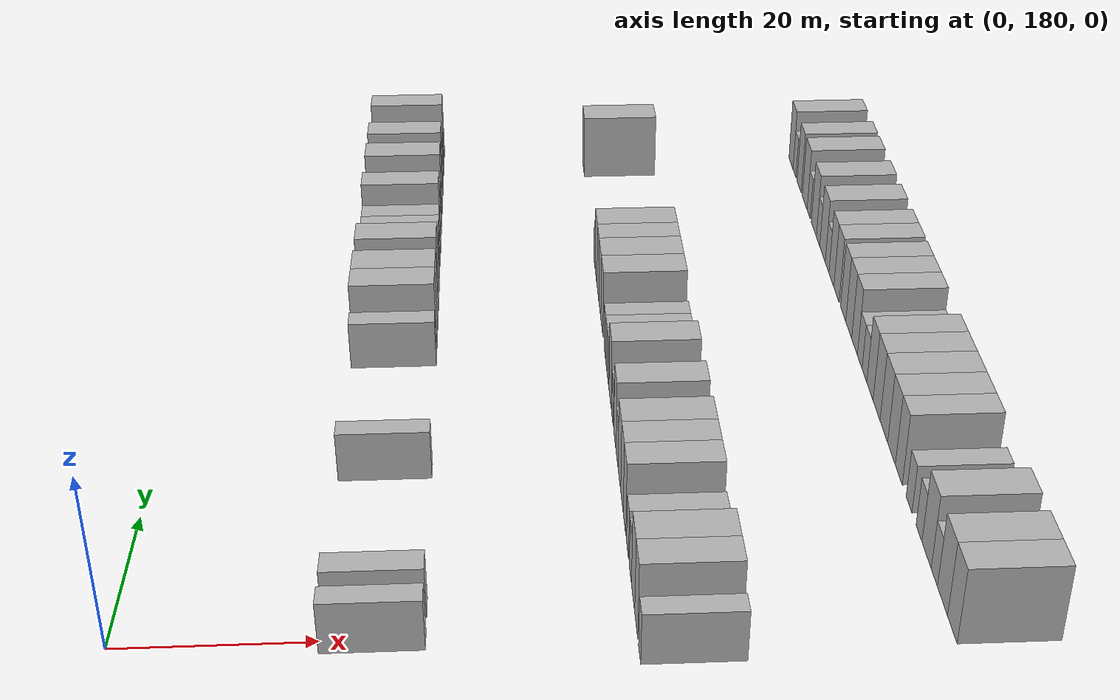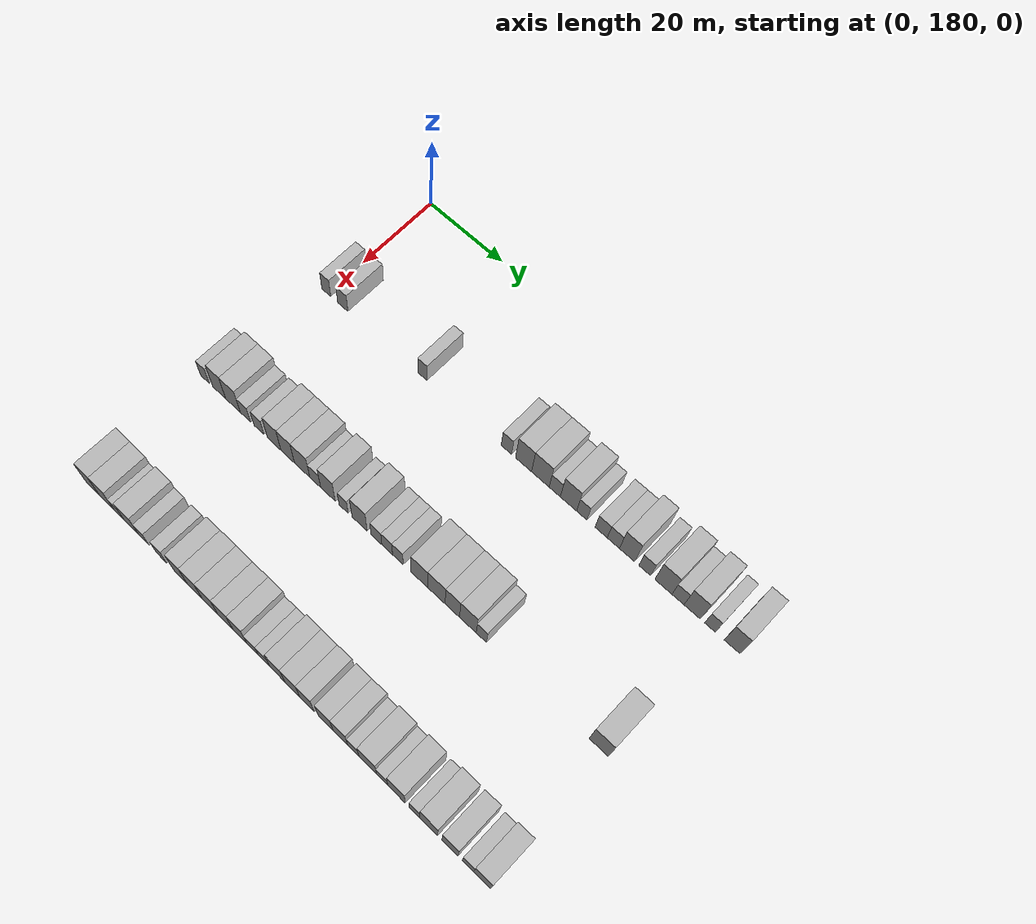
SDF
<sdf version="1.6">
 <world name="default">
  <model name="building_108">
   <static>1</static>
   <pose>25.0000 179.5839 0 0.000000 0.000000 0.000000</pose>
   <link name="link">
    <pose>0 0 3.00 0 0 0</pose>
    <collision name="collision"><geometry><box><size>10.0000 2.5598 6.0000</size></box></geometry></collision>
    <visual name="visual">
     <cast_shadows>0</cast_shadows>
     <geometry><box><size>10.0000 2.5598 6.0000</size></box></geometry>
     <material>
      <script>
       <uri>model://HANNAS_wall/materials/scripts</uri>
       <uri>model://HANNAS_wall/materials/textures</uri>
       <name>vrc/HANNAS_wall</name>
      </script>
     </material>
    </visual>
   </link>
  </model>
  <model name="building_109">
   <static>1</static>
   <pose>25.0000 184.3221 0 0.000000 0.000000 0.000000</pose>
   <link name="link">
    <pose>0 0 3.00 0 0 0</pose>
    <collision name="collision"><geometry><box><size>10.0000 2.9167 6.0000</size></box></geometry></collision>
    <visual name="visual">
     <cast_shadows>0</cast_shadows>
     <geometry><box><size>10.0000 2.9167 6.0000</size></box></geometry>
     <material>
      <script>
       <uri>model://HANNAS_wall/materials/scripts</uri>
       <uri>model://HANNAS_wall/materials/textures</uri>
       <name>vrc/HANNAS_wall</name>
      </script>
     </material>
    </visual>
   </link>
  </model>
  <model name="building_110">
   <static>1</static>
   <pose>25.0000 206.5322 0 0.000000 0.000000 0.000000</pose>
   <link name="link">
    <pose>0 0 3.00 0 0 0</pose>
    <collision name="collision"><geometry><box><size>10.0000 2.5012 6.0000</size></box></geometry></collision>
    <visual name="visual">
     <cast_shadows>0</cast_shadows>
     <geometry><box><size>10.0000 2.5012 6.0000</size></box></geometry>
     <material>
      <script>
       <uri>model://HANNAS_wall/materials/scripts</uri>
       <uri>model://HANNAS_wall/materials/textures</uri>
       <name>vrc/HANNAS_wall</name>
      </script>
     </material>
    </visual>
   </link>
  </model>
  <model name="building_111">
   <static>1</static>
   <pose>25.0000 228.8211 0 0.000000 0.000000 0.000000</pose>
   <link name="link">
    <pose>0 0 3.00 0 0 0</pose>
    <collision name="collision"><geometry><box><size>10.0000 2.6922 6.0000</size></box></geometry></collision>
    <visual name="visual">
     <cast_shadows>0</cast_shadows>
     <geometry><box><size>10.0000 2.6922 6.0000</size></box></geometry>
     <material>
      <script>
       <uri>model://HANNAS_wall/materials/scripts</uri>
       <uri>model://HANNAS_wall/materials/textures</uri>
       <name>vrc/HANNAS_wall</name>
      </script>
     </material>
    </visual>
   </link>
  </model>
  <model name="building_112">
   <static>1</static>
   <pose>25.0000 233.2193 0 0.000000 0.000000 0.000000</pose>
   <link name="link">
    <pose>0 0 4.50 0 0 0</pose>
    <collision name="collision"><geometry><box><size>10.0000 4.1043 9.0000</size></box></geometry></collision>
    <visual name="visual">
     <cast_shadows>0</cast_shadows>
     <geometry><box><size>10.0000 4.1043 9.0000</size></box></geometry>
     <material>
      <script>
       <uri>model://HANNAS_wall/materials/scripts</uri>
       <uri>model://HANNAS_wall/materials/textures</uri>
       <name>vrc/HANNAS_wall</name>
      </script>
     </material>
    </visual>
   </link>
  </model>
  <model name="building_113">
   <static>1</static>
   <pose>25.0000 237.5086 0 0.000000 0.000000 0.000000</pose>
   <link name="link">
    <pose>0 0 4.50 0 0 0</pose>
    <collision name="collision"><geometry><box><size>10.0000 4.4744 9.0000</size></box></geometry></collision>
    <visual name="visual">
     <cast_shadows>0</cast_shadows>
     <geometry><box><size>10.0000 4.4744 9.0000</size></box></geometry>
     <material>
      <script>
       <uri>model://HANNAS_wall/materials/scripts</uri>
       <uri>model://HANNAS_wall/materials/textures</uri>
       <name>vrc/HANNAS_wall</name>
      </script>
     </material>
    </visual>
   </link>
  </model>
  <model name="building_114">
   <static>1</static>
   <pose>25.0000 241.1492 0 0.000000 0.000000 0.000000</pose>
   <link name="link">
    <pose>0 0 3.00 0 0 0</pose>
    <collision name="collision"><geometry><box><size>10.0000 2.8068 6.0000</size></box></geometry></collision>
    <visual name="visual">
     <cast_shadows>0</cast_shadows>
     <geometry><box><size>10.0000 2.8068 6.0000</size></box></geometry>
     <material>
      <script>
       <uri>model://HANNAS_wall/materials/scripts</uri>
       <uri>model://HANNAS_wall/materials/textures</uri>
       <name>vrc/HANNAS_wall</name>
      </script>
     </material>
    </visual>
   </link>
  </model>
  <model name="building_115">
   <static>1</static>
   <pose>25.0000 244.5881 0 0.000000 0.000000 0.000000</pose>
   <link name="link">
    <pose>0 0 4.50 0 0 0</pose>
    <collision name="collision"><geometry><box><size>10.0000 4.0709 9.0000</size></box></geometry></collision>
    <visual name="visual">
     <cast_shadows>0</cast_shadows>
     <geometry><box><size>10.0000 4.0709 9.0000</size></box></geometry>
     <material>
      <script>
       <uri>model://HANNAS_wall/materials/scripts</uri>
       <uri>model://HANNAS_wall/materials/textures</uri>
       <name>vrc/HANNAS_wall</name>
      </script>
     </material>
    </visual>
   </link>
  </model>
  <model name="building_116">
   <static>1</static>
   <pose>25.0000 247.9055 0 0.000000 0.000000 0.000000</pose>
   <link name="link">
    <pose>0 0 3.00 0 0 0</pose>
    <collision name="collision"><geometry><box><size>10.0000 2.5639 6.0000</size></box></geometry></collision>
    <visual name="visual">
     <cast_shadows>0</cast_shadows>
     <geometry><box><size>10.0000 2.5639 6.0000</size></box></geometry>
     <material>
      <script>
       <uri>model://HANNAS_wall/materials/scripts</uri>
       <uri>model://HANNAS_wall/materials/textures</uri>
       <name>vrc/HANNAS_wall</name>
      </script>
     </material>
    </visual>
   </link>
  </model>
  <model name="building_117">
   <static>1</static>
   <pose>25.0000 252.6793 0 0.000000 0.000000 0.000000</pose>
   <link name="link">
    <pose>0 0 3.00 0 0 0</pose>
    <collision name="collision"><geometry><box><size>10.0000 2.9838 6.0000</size></box></geometry></collision>
    <visual name="visual">
     <cast_shadows>0</cast_shadows>
     <geometry><box><size>10.0000 2.9838 6.0000</size></box></geometry>
     <material>
      <script>
       <uri>model://HANNAS_wall/materials/scripts</uri>
       <uri>model://HANNAS_wall/materials/textures</uri>
       <name>vrc/HANNAS_wall</name>
      </script>
     </material>
    </visual>
   </link>
  </model>
  <model name="building_118">
   <static>1</static>
   <pose>25.0000 255.6579 0 0.000000 0.000000 0.000000</pose>
   <link name="link">
    <pose>0 0 3.00 0 0 0</pose>
    <collision name="collision"><geometry><box><size>10.0000 2.9733 6.0000</size></box></geometry></collision>
    <visual name="visual">
     <cast_shadows>0</cast_shadows>
     <geometry><box><size>10.0000 2.9733 6.0000</size></box></geometry>
     <material>
      <script>
       <uri>model://HANNAS_wall/materials/scripts</uri>
       <uri>model://HANNAS_wall/materials/textures</uri>
       <name>vrc/HANNAS_wall</name>
      </script>
     </material>
    </visual>
   </link>
  </model>
  <model name="building_119">
   <static>1</static>
   <pose>25.0000 258.9880 0 0.000000 0.000000 0.000000</pose>
   <link name="link">
    <pose>0 0 4.50 0 0 0</pose>
    <collision name="collision"><geometry><box><size>10.0000 3.6871 9.0000</size></box></geometry></collision>
    <visual name="visual">
     <cast_shadows>0</cast_shadows>
     <geometry><box><size>10.0000 3.6871 9.0000</size></box></geometry>
     <material>
      <script>
       <uri>model://HANNAS_wall/materials/scripts</uri>
       <uri>model://HANNAS_wall/materials/textures</uri>
       <name>vrc/HANNAS_wall</name>
      </script>
     </material>
    </visual>
   </link>
  </model>
  <model name="building_120">
   <static>1</static>
   <pose>25.0000 263.2433 0 0.000000 0.000000 0.000000</pose>
   <link name="link">
    <pose>0 0 3.00 0 0 0</pose>
    <collision name="collision"><geometry><box><size>10.0000 2.8235 6.0000</size></box></geometry></collision>
    <visual name="visual">
     <cast_shadows>0</cast_shadows>
     <geometry><box><size>10.0000 2.8235 6.0000</size></box></geometry>
     <material>
      <script>
       <uri>model://HANNAS_wall/materials/scripts</uri>
       <uri>model://HANNAS_wall/materials/textures</uri>
       <name>vrc/HANNAS_wall</name>
      </script>
     </material>
    </visual>
   </link>
  </model>
  <model name="building_121">
   <static>1</static>
   <pose>25.0000 267.6798 0 0.000000 0.000000 0.000000</pose>
   <link name="link">
    <pose>0 0 4.50 0 0 0</pose>
    <collision name="collision"><geometry><box><size>10.0000 4.0494 9.0000</size></box></geometry></collision>
    <visual name="visual">
     <cast_shadows>0</cast_shadows>
     <geometry><box><size>10.0000 4.0494 9.0000</size></box></geometry>
     <material>
      <script>
       <uri>model://HANNAS_wall/materials/scripts</uri>
       <uri>model://HANNAS_wall/materials/textures</uri>
       <name>vrc/HANNAS_wall</name>
      </script>
     </material>
    </visual>
   </link>
  </model>
  <model name="building_122">
   <static>1</static>
   <pose>25.0000 271.1233 0 0.000000 0.000000 0.000000</pose>
   <link name="link">
    <pose>0 0 3.00 0 0 0</pose>
    <collision name="collision"><geometry><box><size>10.0000 2.8376 6.0000</size></box></geometry></collision>
    <visual name="visual">
     <cast_shadows>0</cast_shadows>
     <geometry><box><size>10.0000 2.8376 6.0000</size></box></geometry>
     <material>
      <script>
       <uri>model://HANNAS_wall/materials/scripts</uri>
       <uri>model://HANNAS_wall/materials/textures</uri>
       <name>vrc/HANNAS_wall</name>
      </script>
     </material>
    </visual>
   </link>
  </model>
  <model name="building_123">
   <static>1</static>
   <pose>25.0000 274.4433 0 0.000000 0.000000 0.000000</pose>
   <link name="link">
    <pose>0 0 4.50 0 0 0</pose>
    <collision name="collision"><geometry><box><size>10.0000 3.8024 9.0000</size></box></geometry></collision>
    <visual name="visual">
     <cast_shadows>0</cast_shadows>
     <geometry><box><size>10.0000 3.8024 9.0000</size></box></geometry>
     <material>
      <script>
       <uri>model://HANNAS_wall/materials/scripts</uri>
       <uri>model://HANNAS_wall/materials/textures</uri>
       <name>vrc/HANNAS_wall</name>
      </script>
     </material>
    </visual>
   </link>
  </model>
  <model name="building_124">
   <static>1</static>
   <pose>25.0000 278.5895 0 0.000000 0.000000 0.000000</pose>
   <link name="link">
    <pose>0 0 3.00 0 0 0</pose>
    <collision name="collision"><geometry><box><size>10.0000 2.4900 6.0000</size></box></geometry></collision>
    <visual name="visual">
     <cast_shadows>0</cast_shadows>
     <geometry><box><size>10.0000 2.4900 6.0000</size></box></geometry>
     <material>
      <script>
       <uri>model://HANNAS_wall/materials/scripts</uri>
       <uri>model://HANNAS_wall/materials/textures</uri>
       <name>vrc/HANNAS_wall</name>
      </script>
     </material>
    </visual>
   </link>
  </model>
  <model name="building_125">
   <static>1</static>
   <pose>25.0000 283.6399 0 0.000000 0.000000 0.000000</pose>
   <link name="link">
    <pose>0 0 4.50 0 0 0</pose>
    <collision name="collision"><geometry><box><size>10.0000 3.6109 9.0000</size></box></geometry></collision>
    <visual name="visual">
     <cast_shadows>0</cast_shadows>
     <geometry><box><size>10.0000 3.6109 9.0000</size></box></geometry>
     <material>
      <script>
       <uri>model://HANNAS_wall/materials/scripts</uri>
       <uri>model://HANNAS_wall/materials/textures</uri>
       <name>vrc/HANNAS_wall</name>
      </script>
     </material>
    </visual>
   </link>
  </model>
  <model name="building_238">
   <static>1</static>
   <pose>55.0000 176.6505 0 0.000000 0.000000 0.000000</pose>
   <link name="link">
    <pose>0 0 3.00 0 0 0</pose>
    <collision name="collision"><geometry><box><size>10.0000 2.5370 6.0000</size></box></geometry></collision>
    <visual name="visual">
     <cast_shadows>0</cast_shadows>
     <geometry><box><size>10.0000 2.5370 6.0000</size></box></geometry>
     <material>
      <script>
       <uri>model://HANNAS_wall/materials/scripts</uri>
       <uri>model://HANNAS_wall/materials/textures</uri>
       <name>vrc/HANNAS_wall</name>
      </script>
     </material>
    </visual>
   </link>
  </model>
  <model name="building_239">
   <static>1</static>
   <pose>55.0000 180.7821 0 0.000000 0.000000 0.000000</pose>
   <link name="link">
    <pose>0 0 4.50 0 0 0</pose>
    <collision name="collision"><geometry><box><size>10.0000 3.7262 9.0000</size></box></geometry></collision>
    <visual name="visual">
     <cast_shadows>0</cast_shadows>
     <geometry><box><size>10.0000 3.7262 9.0000</size></box></geometry>
     <material>
      <script>
       <uri>model://HANNAS_wall/materials/scripts</uri>
       <uri>model://HANNAS_wall/materials/textures</uri>
       <name>vrc/HANNAS_wall</name>
      </script>
     </material>
    </visual>
   </link>
  </model>
  <model name="building_240">
   <static>1</static>
   <pose>55.0000 184.7415 0 0.000000 0.000000 0.000000</pose>
   <link name="link">
    <pose>0 0 4.50 0 0 0</pose>
    <collision name="collision"><geometry><box><size>10.0000 4.1928 9.0000</size></box></geometry></collision>
    <visual name="visual">
     <cast_shadows>0</cast_shadows>
     <geometry><box><size>10.0000 4.1928 9.0000</size></box></geometry>
     <material>
      <script>
       <uri>model://HANNAS_wall/materials/scripts</uri>
       <uri>model://HANNAS_wall/materials/textures</uri>
       <name>vrc/HANNAS_wall</name>
      </script>
     </material>
    </visual>
   </link>
  </model>
  <model name="building_241">
   <static>1</static>
   <pose>55.0000 188.2786 0 0.000000 0.000000 0.000000</pose>
   <link name="link">
    <pose>0 0 3.00 0 0 0</pose>
    <collision name="collision"><geometry><box><size>10.0000 2.8814 6.0000</size></box></geometry></collision>
    <visual name="visual">
     <cast_shadows>0</cast_shadows>
     <geometry><box><size>10.0000 2.8814 6.0000</size></box></geometry>
     <material>
      <script>
       <uri>model://HANNAS_wall/materials/scripts</uri>
       <uri>model://HANNAS_wall/materials/textures</uri>
       <name>vrc/HANNAS_wall</name>
      </script>
     </material>
    </visual>
   </link>
  </model>
  <model name="building_242">
   <static>1</static>
   <pose>55.0000 192.0998 0 0.000000 0.000000 0.000000</pose>
   <link name="link">
    <pose>0 0 3.00 0 0 0</pose>
    <collision name="collision"><geometry><box><size>10.0000 2.7609 6.0000</size></box></geometry></collision>
    <visual name="visual">
     <cast_shadows>0</cast_shadows>
     <geometry><box><size>10.0000 2.7609 6.0000</size></box></geometry>
     <material>
      <script>
       <uri>model://HANNAS_wall/materials/scripts</uri>
       <uri>model://HANNAS_wall/materials/textures</uri>
       <name>vrc/HANNAS_wall</name>
      </script>
     </material>
    </visual>
   </link>
  </model>
  <model name="building_243">
   <static>1</static>
   <pose>55.0000 196.3557 0 0.000000 0.000000 0.000000</pose>
   <link name="link">
    <pose>0 0 4.50 0 0 0</pose>
    <collision name="collision"><geometry><box><size>10.0000 3.7509 9.0000</size></box></geometry></collision>
    <visual name="visual">
     <cast_shadows>0</cast_shadows>
     <geometry><box><size>10.0000 3.7509 9.0000</size></box></geometry>
     <material>
      <script>
       <uri>model://HANNAS_wall/materials/scripts</uri>
       <uri>model://HANNAS_wall/materials/textures</uri>
       <name>vrc/HANNAS_wall</name>
      </script>
     </material>
    </visual>
   </link>
  </model>
  <model name="building_244">
   <static>1</static>
   <pose>55.0000 200.1061 0 0.000000 0.000000 0.000000</pose>
   <link name="link">
    <pose>0 0 4.50 0 0 0</pose>
    <collision name="collision"><geometry><box><size>10.0000 3.7500 9.0000</size></box></geometry></collision>
    <visual name="visual">
     <cast_shadows>0</cast_shadows>
     <geometry><box><size>10.0000 3.7500 9.0000</size></box></geometry>
     <material>
      <script>
       <uri>model://HANNAS_wall/materials/scripts</uri>
       <uri>model://HANNAS_wall/materials/textures</uri>
       <name>vrc/HANNAS_wall</name>
      </script>
     </material>
    </visual>
   </link>
  </model>
  <model name="building_245">
   <static>1</static>
   <pose>55.0000 204.0801 0 0.000000 0.000000 0.000000</pose>
   <link name="link">
    <pose>0 0 4.50 0 0 0</pose>
    <collision name="collision"><geometry><box><size>10.0000 4.1981 9.0000</size></box></geometry></collision>
    <visual name="visual">
     <cast_shadows>0</cast_shadows>
     <geometry><box><size>10.0000 4.1981 9.0000</size></box></geometry>
     <material>
      <script>
       <uri>model://HANNAS_wall/materials/scripts</uri>
       <uri>model://HANNAS_wall/materials/textures</uri>
       <name>vrc/HANNAS_wall</name>
      </script>
     </material>
    </visual>
   </link>
  </model>
  <model name="building_246">
   <static>1</static>
   <pose>55.0000 207.6534 0 0.000000 0.000000 0.000000</pose>
   <link name="link">
    <pose>0 0 3.00 0 0 0</pose>
    <collision name="collision"><geometry><box><size>10.0000 2.9484 6.0000</size></box></geometry></collision>
    <visual name="visual">
     <cast_shadows>0</cast_shadows>
     <geometry><box><size>10.0000 2.9484 6.0000</size></box></geometry>
     <material>
      <script>
       <uri>model://HANNAS_wall/materials/scripts</uri>
       <uri>model://HANNAS_wall/materials/textures</uri>
       <name>vrc/HANNAS_wall</name>
      </script>
     </material>
    </visual>
   </link>
  </model>
  <model name="building_247">
   <static>1</static>
   <pose>55.0000 211.0890 0 0.000000 0.000000 0.000000</pose>
   <link name="link">
    <pose>0 0 4.50 0 0 0</pose>
    <collision name="collision"><geometry><box><size>10.0000 3.9227 9.0000</size></box></geometry></collision>
    <visual name="visual">
     <cast_shadows>0</cast_shadows>
     <geometry><box><size>10.0000 3.9227 9.0000</size></box></geometry>
     <material>
      <script>
       <uri>model://HANNAS_wall/materials/scripts</uri>
       <uri>model://HANNAS_wall/materials/textures</uri>
       <name>vrc/HANNAS_wall</name>
      </script>
     </material>
    </visual>
   </link>
  </model>
  <model name="building_248">
   <static>1</static>
   <pose>55.0000 215.2648 0 0.000000 0.000000 0.000000</pose>
   <link name="link">
    <pose>0 0 3.00 0 0 0</pose>
    <collision name="collision"><geometry><box><size>10.0000 2.4289 6.0000</size></box></geometry></collision>
    <visual name="visual">
     <cast_shadows>0</cast_shadows>
     <geometry><box><size>10.0000 2.4289 6.0000</size></box></geometry>
     <material>
      <script>
       <uri>model://HANNAS_wall/materials/scripts</uri>
       <uri>model://HANNAS_wall/materials/textures</uri>
       <name>vrc/HANNAS_wall</name>
      </script>
     </material>
    </visual>
   </link>
  </model>
  <model name="building_249">
   <static>1</static>
   <pose>55.0000 219.4747 0 0.000000 0.000000 0.000000</pose>
   <link name="link">
    <pose>0 0 4.50 0 0 0</pose>
    <collision name="collision"><geometry><box><size>10.0000 3.9911 9.0000</size></box></geometry></collision>
    <visual name="visual">
     <cast_shadows>0</cast_shadows>
     <geometry><box><size>10.0000 3.9911 9.0000</size></box></geometry>
     <material>
      <script>
       <uri>model://HANNAS_wall/materials/scripts</uri>
       <uri>model://HANNAS_wall/materials/textures</uri>
       <name>vrc/HANNAS_wall</name>
      </script>
     </material>
    </visual>
   </link>
  </model>
  <model name="building_250">
   <static>1</static>
   <pose>55.0000 223.8853 0 0.000000 0.000000 0.000000</pose>
   <link name="link">
    <pose>0 0 3.00 0 0 0</pose>
    <collision name="collision"><geometry><box><size>10.0000 2.8301 6.0000</size></box></geometry></collision>
    <visual name="visual">
     <cast_shadows>0</cast_shadows>
     <geometry><box><size>10.0000 2.8301 6.0000</size></box></geometry>
     <material>
      <script>
       <uri>model://HANNAS_wall/materials/scripts</uri>
       <uri>model://HANNAS_wall/materials/textures</uri>
       <name>vrc/HANNAS_wall</name>
      </script>
     </material>
    </visual>
   </link>
  </model>
  <model name="building_251">
   <static>1</static>
   <pose>55.0000 226.6952 0 0.000000 0.000000 0.000000</pose>
   <link name="link">
    <pose>0 0 3.00 0 0 0</pose>
    <collision name="collision"><geometry><box><size>10.0000 2.7897 6.0000</size></box></geometry></collision>
    <visual name="visual">
     <cast_shadows>0</cast_shadows>
     <geometry><box><size>10.0000 2.7897 6.0000</size></box></geometry>
     <material>
      <script>
       <uri>model://HANNAS_wall/materials/scripts</uri>
       <uri>model://HANNAS_wall/materials/textures</uri>
       <name>vrc/HANNAS_wall</name>
      </script>
     </material>
    </visual>
   </link>
  </model>
  <model name="building_252">
   <static>1</static>
   <pose>55.0000 229.4652 0 0.000000 0.000000 0.000000</pose>
   <link name="link">
    <pose>0 0 3.00 0 0 0</pose>
    <collision name="collision"><geometry><box><size>10.0000 2.7503 6.0000</size></box></geometry></collision>
    <visual name="visual">
     <cast_shadows>0</cast_shadows>
     <geometry><box><size>10.0000 2.7503 6.0000</size></box></geometry>
     <material>
      <script>
       <uri>model://HANNAS_wall/materials/scripts</uri>
       <uri>model://HANNAS_wall/materials/textures</uri>
       <name>vrc/HANNAS_wall</name>
      </script>
     </material>
    </visual>
   </link>
  </model>
  <model name="building_253">
   <static>1</static>
   <pose>55.0000 234.9416 0 0.000000 0.000000 0.000000</pose>
   <link name="link">
    <pose>0 0 4.50 0 0 0</pose>
    <collision name="collision"><geometry><box><size>10.0000 4.2026 9.0000</size></box></geometry></collision>
    <visual name="visual">
     <cast_shadows>0</cast_shadows>
     <geometry><box><size>10.0000 4.2026 9.0000</size></box></geometry>
     <material>
      <script>
       <uri>model://HANNAS_wall/materials/scripts</uri>
       <uri>model://HANNAS_wall/materials/textures</uri>
       <name>vrc/HANNAS_wall</name>
      </script>
     </material>
    </visual>
   </link>
  </model>
  <model name="building_254">
   <static>1</static>
   <pose>55.0000 239.2502 0 0.000000 0.000000 0.000000</pose>
   <link name="link">
    <pose>0 0 4.50 0 0 0</pose>
    <collision name="collision"><geometry><box><size>10.0000 4.4145 9.0000</size></box></geometry></collision>
    <visual name="visual">
     <cast_shadows>0</cast_shadows>
     <geometry><box><size>10.0000 4.4145 9.0000</size></box></geometry>
     <material>
      <script>
       <uri>model://HANNAS_wall/materials/scripts</uri>
       <uri>model://HANNAS_wall/materials/textures</uri>
       <name>vrc/HANNAS_wall</name>
      </script>
     </material>
    </visual>
   </link>
  </model>
  <model name="building_255">
   <static>1</static>
   <pose>55.0000 243.2577 0 0.000000 0.000000 0.000000</pose>
   <link name="link">
    <pose>0 0 4.50 0 0 0</pose>
    <collision name="collision"><geometry><box><size>10.0000 3.6005 9.0000</size></box></geometry></collision>
    <visual name="visual">
     <cast_shadows>0</cast_shadows>
     <geometry><box><size>10.0000 3.6005 9.0000</size></box></geometry>
     <material>
      <script>
       <uri>model://HANNAS_wall/materials/scripts</uri>
       <uri>model://HANNAS_wall/materials/textures</uri>
       <name>vrc/HANNAS_wall</name>
      </script>
     </material>
    </visual>
   </link>
  </model>
  <model name="building_256">
   <static>1</static>
   <pose>55.0000 247.1183 0 0.000000 0.000000 0.000000</pose>
   <link name="link">
    <pose>0 0 4.50 0 0 0</pose>
    <collision name="collision"><geometry><box><size>10.0000 4.1207 9.0000</size></box></geometry></collision>
    <visual name="visual">
     <cast_shadows>0</cast_shadows>
     <geometry><box><size>10.0000 4.1207 9.0000</size></box></geometry>
     <material>
      <script>
       <uri>model://HANNAS_wall/materials/scripts</uri>
       <uri>model://HANNAS_wall/materials/textures</uri>
       <name>vrc/HANNAS_wall</name>
      </script>
     </material>
    </visual>
   </link>
  </model>
  <model name="building_257">
   <static>1</static>
   <pose>55.0000 250.4453 0 0.000000 0.000000 0.000000</pose>
   <link name="link">
    <pose>0 0 3.00 0 0 0</pose>
    <collision name="collision"><geometry><box><size>10.0000 2.5334 6.0000</size></box></geometry></collision>
    <visual name="visual">
     <cast_shadows>0</cast_shadows>
     <geometry><box><size>10.0000 2.5334 6.0000</size></box></geometry>
     <material>
      <script>
       <uri>model://HANNAS_wall/materials/scripts</uri>
       <uri>model://HANNAS_wall/materials/textures</uri>
       <name>vrc/HANNAS_wall</name>
      </script>
     </material>
    </visual>
   </link>
  </model>
  <model name="building_258">
   <static>1</static>
   <pose>55.0000 278.3183 0 0.000000 0.000000 0.000000</pose>
   <link name="link">
    <pose>0 0 4.50 0 0 0</pose>
    <collision name="collision"><geometry><box><size>10.0000 4.4042 9.0000</size></box></geometry></collision>
    <visual name="visual">
     <cast_shadows>0</cast_shadows>
     <geometry><box><size>10.0000 4.4042 9.0000</size></box></geometry>
     <material>
      <script>
       <uri>model://HANNAS_wall/materials/scripts</uri>
       <uri>model://HANNAS_wall/materials/textures</uri>
       <name>vrc/HANNAS_wall</name>
      </script>
     </material>
    </visual>
   </link>
  </model>
  <model name="building_373">
   <static>1</static>
   <pose>85.0000 178.7005 0 0.000000 0.000000 0.000000</pose>
   <link name="link">
    <pose>0 0 4.50 0 0 0</pose>
    <collision name="collision"><geometry><box><size>10.0000 3.9668 9.0000</size></box></geometry></collision>
    <visual name="visual">
     <cast_shadows>0</cast_shadows>
     <geometry><box><size>10.0000 3.9668 9.0000</size></box></geometry>
     <material>
      <script>
       <uri>model://HANNAS_wall/materials/scripts</uri>
       <uri>model://HANNAS_wall/materials/textures</uri>
       <name>vrc/HANNAS_wall</name>
      </script>
     </material>
    </visual>
   </link>
  </model>
  <model name="building_374">
   <static>1</static>
   <pose>85.0000 182.8506 0 0.000000 0.000000 0.000000</pose>
   <link name="link">
    <pose>0 0 4.50 0 0 0</pose>
    <collision name="collision"><geometry><box><size>10.0000 4.3332 9.0000</size></box></geometry></collision>
    <visual name="visual">
     <cast_shadows>0</cast_shadows>
     <geometry><box><size>10.0000 4.3332 9.0000</size></box></geometry>
     <material>
      <script>
       <uri>model://HANNAS_wall/materials/scripts</uri>
       <uri>model://HANNAS_wall/materials/textures</uri>
       <name>vrc/HANNAS_wall</name>
      </script>
     </material>
    </visual>
   </link>
  </model>
  <model name="building_375">
   <static>1</static>
   <pose>85.0000 186.3834 0 0.000000 0.000000 0.000000</pose>
   <link name="link">
    <pose>0 0 3.00 0 0 0</pose>
    <collision name="collision"><geometry><box><size>10.0000 2.7324 6.0000</size></box></geometry></collision>
    <visual name="visual">
     <cast_shadows>0</cast_shadows>
     <geometry><box><size>10.0000 2.7324 6.0000</size></box></geometry>
     <material>
      <script>
       <uri>model://HANNAS_wall/materials/scripts</uri>
       <uri>model://HANNAS_wall/materials/textures</uri>
       <name>vrc/HANNAS_wall</name>
      </script>
     </material>
    </visual>
   </link>
  </model>
  <model name="building_376">
   <static>1</static>
   <pose>85.0000 189.8733 0 0.000000 0.000000 0.000000</pose>
   <link name="link">
    <pose>0 0 4.50 0 0 0</pose>
    <collision name="collision"><geometry><box><size>10.0000 4.2475 9.0000</size></box></geometry></collision>
    <visual name="visual">
     <cast_shadows>0</cast_shadows>
     <geometry><box><size>10.0000 4.2475 9.0000</size></box></geometry>
     <material>
      <script>
       <uri>model://HANNAS_wall/materials/scripts</uri>
       <uri>model://HANNAS_wall/materials/textures</uri>
       <name>vrc/HANNAS_wall</name>
      </script>
     </material>
    </visual>
   </link>
  </model>
  <model name="building_377">
   <static>1</static>
   <pose>85.0000 193.3762 0 0.000000 0.000000 0.000000</pose>
   <link name="link">
    <pose>0 0 3.00 0 0 0</pose>
    <collision name="collision"><geometry><box><size>10.0000 2.7584 6.0000</size></box></geometry></collision>
    <visual name="visual">
     <cast_shadows>0</cast_shadows>
     <geometry><box><size>10.0000 2.7584 6.0000</size></box></geometry>
     <material>
      <script>
       <uri>model://HANNAS_wall/materials/scripts</uri>
       <uri>model://HANNAS_wall/materials/textures</uri>
       <name>vrc/HANNAS_wall</name>
      </script>
     </material>
    </visual>
   </link>
  </model>
  <model name="building_378">
   <static>1</static>
   <pose>85.0000 198.1816 0 0.000000 0.000000 0.000000</pose>
   <link name="link">
    <pose>0 0 3.00 0 0 0</pose>
    <collision name="collision"><geometry><box><size>10.0000 2.8524 6.0000</size></box></geometry></collision>
    <visual name="visual">
     <cast_shadows>0</cast_shadows>
     <geometry><box><size>10.0000 2.8524 6.0000</size></box></geometry>
     <material>
      <script>
       <uri>model://HANNAS_wall/materials/scripts</uri>
       <uri>model://HANNAS_wall/materials/textures</uri>
       <name>vrc/HANNAS_wall</name>
      </script>
     </material>
    </visual>
   </link>
  </model>
  <model name="building_379">
   <static>1</static>
   <pose>85.0000 203.4276 0 0.000000 0.000000 0.000000</pose>
   <link name="link">
    <pose>0 0 4.50 0 0 0</pose>
    <collision name="collision"><geometry><box><size>10.0000 3.6395 9.0000</size></box></geometry></collision>
    <visual name="visual">
     <cast_shadows>0</cast_shadows>
     <geometry><box><size>10.0000 3.6395 9.0000</size></box></geometry>
     <material>
      <script>
       <uri>model://HANNAS_wall/materials/scripts</uri>
       <uri>model://HANNAS_wall/materials/textures</uri>
       <name>vrc/HANNAS_wall</name>
      </script>
     </material>
    </visual>
   </link>
  </model>
  <model name="building_380">
   <static>1</static>
   <pose>85.0000 207.3209 0 0.000000 0.000000 0.000000</pose>
   <link name="link">
    <pose>0 0 4.50 0 0 0</pose>
    <collision name="collision"><geometry><box><size>10.0000 4.1471 9.0000</size></box></geometry></collision>
    <visual name="visual">
     <cast_shadows>0</cast_shadows>
     <geometry><box><size>10.0000 4.1471 9.0000</size></box></geometry>
     <material>
      <script>
       <uri>model://HANNAS_wall/materials/scripts</uri>
       <uri>model://HANNAS_wall/materials/textures</uri>
       <name>vrc/HANNAS_wall</name>
      </script>
     </material>
    </visual>
   </link>
  </model>
  <model name="building_381">
   <static>1</static>
   <pose>85.0000 211.5154 0 0.000000 0.000000 0.000000</pose>
   <link name="link">
    <pose>0 0 4.50 0 0 0</pose>
    <collision name="collision"><geometry><box><size>10.0000 4.2418 9.0000</size></box></geometry></collision>
    <visual name="visual">
     <cast_shadows>0</cast_shadows>
     <geometry><box><size>10.0000 4.2418 9.0000</size></box></geometry>
     <material>
      <script>
       <uri>model://HANNAS_wall/materials/scripts</uri>
       <uri>model://HANNAS_wall/materials/textures</uri>
       <name>vrc/HANNAS_wall</name>
      </script>
     </material>
    </visual>
   </link>
  </model>
  <model name="building_382">
   <static>1</static>
   <pose>85.0000 215.6570 0 0.000000 0.000000 0.000000</pose>
   <link name="link">
    <pose>0 0 4.50 0 0 0</pose>
    <collision name="collision"><geometry><box><size>10.0000 4.0415 9.0000</size></box></geometry></collision>
    <visual name="visual">
     <cast_shadows>0</cast_shadows>
     <geometry><box><size>10.0000 4.0415 9.0000</size></box></geometry>
     <material>
      <script>
       <uri>model://HANNAS_wall/materials/scripts</uri>
       <uri>model://HANNAS_wall/materials/textures</uri>
       <name>vrc/HANNAS_wall</name>
      </script>
     </material>
    </visual>
   </link>
  </model>
  <model name="building_383">
   <static>1</static>
   <pose>85.0000 219.5655 0 0.000000 0.000000 0.000000</pose>
   <link name="link">
    <pose>0 0 4.50 0 0 0</pose>
    <collision name="collision"><geometry><box><size>10.0000 3.7754 9.0000</size></box></geometry></collision>
    <visual name="visual">
     <cast_shadows>0</cast_shadows>
     <geometry><box><size>10.0000 3.7754 9.0000</size></box></geometry>
     <material>
      <script>
       <uri>model://HANNAS_wall/materials/scripts</uri>
       <uri>model://HANNAS_wall/materials/textures</uri>
       <name>vrc/HANNAS_wall</name>
      </script>
     </material>
    </visual>
   </link>
  </model>
  <model name="building_384">
   <static>1</static>
   <pose>85.0000 222.9147 0 0.000000 0.000000 0.000000</pose>
   <link name="link">
    <pose>0 0 3.00 0 0 0</pose>
    <collision name="collision"><geometry><box><size>10.0000 2.9231 6.0000</size></box></geometry></collision>
    <visual name="visual">
     <cast_shadows>0</cast_shadows>
     <geometry><box><size>10.0000 2.9231 6.0000</size></box></geometry>
     <material>
      <script>
       <uri>model://HANNAS_wall/materials/scripts</uri>
       <uri>model://HANNAS_wall/materials/textures</uri>
       <name>vrc/HANNAS_wall</name>
      </script>
     </material>
    </visual>
   </link>
  </model>
  <model name="building_385">
   <static>1</static>
   <pose>85.0000 225.8564 0 0.000000 0.000000 0.000000</pose>
   <link name="link">
    <pose>0 0 3.00 0 0 0</pose>
    <collision name="collision"><geometry><box><size>10.0000 2.9601 6.0000</size></box></geometry></collision>
    <visual name="visual">
     <cast_shadows>0</cast_shadows>
     <geometry><box><size>10.0000 2.9601 6.0000</size></box></geometry>
     <material>
      <script>
       <uri>model://HANNAS_wall/materials/scripts</uri>
       <uri>model://HANNAS_wall/materials/textures</uri>
       <name>vrc/HANNAS_wall</name>
      </script>
     </material>
    </visual>
   </link>
  </model>
  <model name="building_386">
   <static>1</static>
   <pose>85.0000 229.2007 0 0.000000 0.000000 0.000000</pose>
   <link name="link">
    <pose>0 0 4.50 0 0 0</pose>
    <collision name="collision"><geometry><box><size>10.0000 3.7285 9.0000</size></box></geometry></collision>
    <visual name="visual">
     <cast_shadows>0</cast_shadows>
     <geometry><box><size>10.0000 3.7285 9.0000</size></box></geometry>
     <material>
      <script>
       <uri>model://HANNAS_wall/materials/scripts</uri>
       <uri>model://HANNAS_wall/materials/textures</uri>
       <name>vrc/HANNAS_wall</name>
      </script>
     </material>
    </visual>
   </link>
  </model>
  <model name="building_387">
   <static>1</static>
   <pose>85.0000 233.0295 0 0.000000 0.000000 0.000000</pose>
   <link name="link">
    <pose>0 0 4.50 0 0 0</pose>
    <collision name="collision"><geometry><box><size>10.0000 3.9292 9.0000</size></box></geometry></collision>
    <visual name="visual">
     <cast_shadows>0</cast_shadows>
     <geometry><box><size>10.0000 3.9292 9.0000</size></box></geometry>
     <material>
      <script>
       <uri>model://HANNAS_wall/materials/scripts</uri>
       <uri>model://HANNAS_wall/materials/textures</uri>
       <name>vrc/HANNAS_wall</name>
      </script>
     </material>
    </visual>
   </link>
  </model>
  <model name="building_388">
   <static>1</static>
   <pose>85.0000 236.8058 0 0.000000 0.000000 0.000000</pose>
   <link name="link">
    <pose>0 0 4.50 0 0 0</pose>
    <collision name="collision"><geometry><box><size>10.0000 3.6235 9.0000</size></box></geometry></collision>
    <visual name="visual">
     <cast_shadows>0</cast_shadows>
     <geometry><box><size>10.0000 3.6235 9.0000</size></box></geometry>
     <material>
      <script>
       <uri>model://HANNAS_wall/materials/scripts</uri>
       <uri>model://HANNAS_wall/materials/textures</uri>
       <name>vrc/HANNAS_wall</name>
      </script>
     </material>
    </visual>
   </link>
  </model>
  <model name="building_389">
   <static>1</static>
   <pose>85.0000 241.5048 0 0.000000 0.000000 0.000000</pose>
   <link name="link">
    <pose>0 0 4.50 0 0 0</pose>
    <collision name="collision"><geometry><box><size>10.0000 3.7743 9.0000</size></box></geometry></collision>
    <visual name="visual">
     <cast_shadows>0</cast_shadows>
     <geometry><box><size>10.0000 3.7743 9.0000</size></box></geometry>
     <material>
      <script>
       <uri>model://HANNAS_wall/materials/scripts</uri>
       <uri>model://HANNAS_wall/materials/textures</uri>
       <name>vrc/HANNAS_wall</name>
      </script>
     </material>
    </visual>
   </link>
  </model>
  <model name="building_390">
   <static>1</static>
   <pose>85.0000 245.2124 0 0.000000 0.000000 0.000000</pose>
   <link name="link">
    <pose>0 0 4.50 0 0 0</pose>
    <collision name="collision"><geometry><box><size>10.0000 3.6411 9.0000</size></box></geometry></collision>
    <visual name="visual">
     <cast_shadows>0</cast_shadows>
     <geometry><box><size>10.0000 3.6411 9.0000</size></box></geometry>
     <material>
      <script>
       <uri>model://HANNAS_wall/materials/scripts</uri>
       <uri>model://HANNAS_wall/materials/textures</uri>
       <name>vrc/HANNAS_wall</name>
      </script>
     </material>
    </visual>
   </link>
  </model>
  <model name="building_391">
   <static>1</static>
   <pose>85.0000 248.4188 0 0.000000 0.000000 0.000000</pose>
   <link name="link">
    <pose>0 0 3.00 0 0 0</pose>
    <collision name="collision"><geometry><box><size>10.0000 2.7716 6.0000</size></box></geometry></collision>
    <visual name="visual">
     <cast_shadows>0</cast_shadows>
     <geometry><box><size>10.0000 2.7716 6.0000</size></box></geometry>
     <material>
      <script>
       <uri>model://HANNAS_wall/materials/scripts</uri>
       <uri>model://HANNAS_wall/materials/textures</uri>
       <name>vrc/HANNAS_wall</name>
      </script>
     </material>
    </visual>
   </link>
  </model>
  <model name="building_392">
   <static>1</static>
   <pose>85.0000 251.9453 0 0.000000 0.000000 0.000000</pose>
   <link name="link">
    <pose>0 0 4.50 0 0 0</pose>
    <collision name="collision"><geometry><box><size>10.0000 4.2814 9.0000</size></box></geometry></collision>
    <visual name="visual">
     <cast_shadows>0</cast_shadows>
     <geometry><box><size>10.0000 4.2814 9.0000</size></box></geometry>
     <material>
      <script>
       <uri>model://HANNAS_wall/materials/scripts</uri>
       <uri>model://HANNAS_wall/materials/textures</uri>
       <name>vrc/HANNAS_wall</name>
      </script>
     </material>
    </visual>
   </link>
  </model>
  <model name="building_393">
   <static>1</static>
   <pose>85.0000 255.4132 0 0.000000 0.000000 0.000000</pose>
   <link name="link">
    <pose>0 0 3.00 0 0 0</pose>
    <collision name="collision"><geometry><box><size>10.0000 2.6545 6.0000</size></box></geometry></collision>
    <visual name="visual">
     <cast_shadows>0</cast_shadows>
     <geometry><box><size>10.0000 2.6545 6.0000</size></box></geometry>
     <material>
      <script>
       <uri>model://HANNAS_wall/materials/scripts</uri>
       <uri>model://HANNAS_wall/materials/textures</uri>
       <name>vrc/HANNAS_wall</name>
      </script>
     </material>
    </visual>
   </link>
  </model>
  <model name="building_394">
   <static>1</static>
   <pose>85.0000 258.8153 0 0.000000 0.000000 0.000000</pose>
   <link name="link">
    <pose>0 0 4.50 0 0 0</pose>
    <collision name="collision"><geometry><box><size>10.0000 4.1498 9.0000</size></box></geometry></collision>
    <visual name="visual">
     <cast_shadows>0</cast_shadows>
     <geometry><box><size>10.0000 4.1498 9.0000</size></box></geometry>
     <material>
      <script>
       <uri>model://HANNAS_wall/materials/scripts</uri>
       <uri>model://HANNAS_wall/materials/textures</uri>
       <name>vrc/HANNAS_wall</name>
      </script>
     </material>
    </visual>
   </link>
  </model>
  <model name="building_395">
   <static>1</static>
   <pose>85.0000 263.1476 0 0.000000 0.000000 0.000000</pose>
   <link name="link">
    <pose>0 0 3.00 0 0 0</pose>
    <collision name="collision"><geometry><box><size>10.0000 2.5146 6.0000</size></box></geometry></collision>
    <visual name="visual">
     <cast_shadows>0</cast_shadows>
     <geometry><box><size>10.0000 2.5146 6.0000</size></box></geometry>
     <material>
      <script>
       <uri>model://HANNAS_wall/materials/scripts</uri>
       <uri>model://HANNAS_wall/materials/textures</uri>
       <name>vrc/HANNAS_wall</name>
      </script>
     </material>
    </visual>
   </link>
  </model>
  <model name="building_396">
   <static>1</static>
   <pose>85.0000 266.4834 0 0.000000 0.000000 0.000000</pose>
   <link name="link">
    <pose>0 0 4.50 0 0 0</pose>
    <collision name="collision"><geometry><box><size>10.0000 4.1571 9.0000</size></box></geometry></collision>
    <visual name="visual">
     <cast_shadows>0</cast_shadows>
     <geometry><box><size>10.0000 4.1571 9.0000</size></box></geometry>
     <material>
      <script>
       <uri>model://HANNAS_wall/materials/scripts</uri>
       <uri>model://HANNAS_wall/materials/textures</uri>
       <name>vrc/HANNAS_wall</name>
      </script>
     </material>
    </visual>
   </link>
  </model>
  <model name="building_397">
   <static>1</static>
   <pose>85.0000 271.4226 0 0.000000 0.000000 0.000000</pose>
   <link name="link">
    <pose>0 0 4.50 0 0 0</pose>
    <collision name="collision"><geometry><box><size>10.0000 3.7213 9.0000</size></box></geometry></collision>
    <visual name="visual">
     <cast_shadows>0</cast_shadows>
     <geometry><box><size>10.0000 3.7213 9.0000</size></box></geometry>
     <material>
      <script>
       <uri>model://HANNAS_wall/materials/scripts</uri>
       <uri>model://HANNAS_wall/materials/textures</uri>
       <name>vrc/HANNAS_wall</name>
      </script>
     </material>
    </visual>
   </link>
  </model>
  <model name="building_398">
   <static>1</static>
   <pose>85.0000 275.5912 0 0.000000 0.000000 0.000000</pose>
   <link name="link">
    <pose>0 0 3.00 0 0 0</pose>
    <collision name="collision"><geometry><box><size>10.0000 2.6159 6.0000</size></box></geometry></collision>
    <visual name="visual">
     <cast_shadows>0</cast_shadows>
     <geometry><box><size>10.0000 2.6159 6.0000</size></box></geometry>
     <material>
      <script>
       <uri>model://HANNAS_wall/materials/scripts</uri>
       <uri>model://HANNAS_wall/materials/textures</uri>
       <name>vrc/HANNAS_wall</name>
      </script>
     </material>
    </visual>
   </link>
  </model>
  <model name="building_399">
   <static>1</static>
   <pose>85.0000 278.8096 0 0.000000 0.000000 0.000000</pose>
   <link name="link">
    <pose>0 0 4.50 0 0 0</pose>
    <collision name="collision"><geometry><box><size>10.0000 3.8208 9.0000</size></box></geometry></collision>
    <visual name="visual">
     <cast_shadows>0</cast_shadows>
     <geometry><box><size>10.0000 3.8208 9.0000</size></box></geometry>
     <material>
      <script>
       <uri>model://HANNAS_wall/materials/scripts</uri>
       <uri>model://HANNAS_wall/materials/textures</uri>
       <name>vrc/HANNAS_wall</name>
      </script>
     </material>
    </visual>
   </link>
  </model>
 </world>
</sdf>
